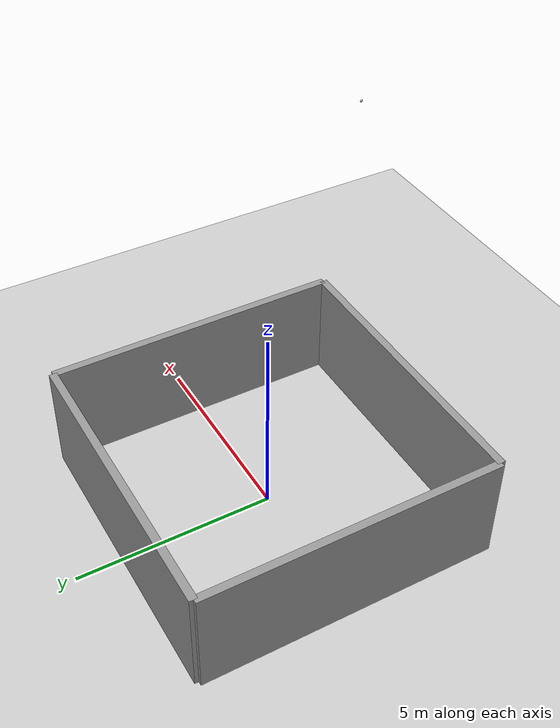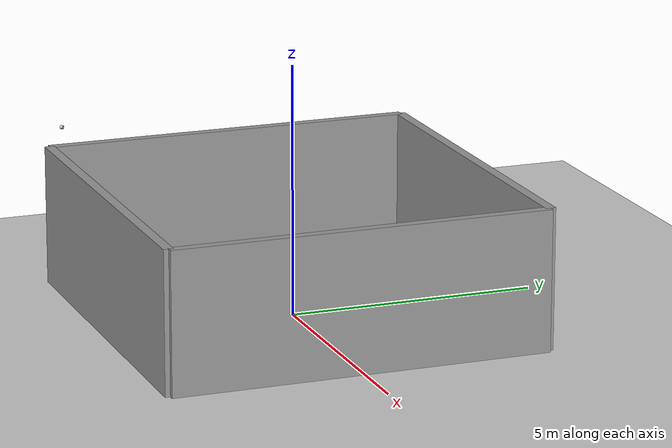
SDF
<sdf version="1.6">
 <world name="wheeltec_rrt_explore">
  <include><uri>model://ground_plane</uri></include>
  <include><uri>model://sun</uri></include>
  <include><name>wall_north</name><uri>model://grey_wall</uri><pose>0 3.75 0 0 0 0</pose></include>
  <include><name>wall_south</name><uri>model://grey_wall</uri><pose>0 -3.75 0 0 0 0</pose></include>
  <include><name>wall_east</name><uri>model://grey_wall</uri><pose>3.75 0 0 0 0 1.5708</pose></include>
  <include><name>wall_west</name><uri>model://grey_wall</uri><pose>-3.75 0 0 0 0 1.5708</pose></include>
  <model name="scene_camera">
   <static>true</static>
   <pose>6.5 -6.5 6.0 0 0.578 2.356</pose>
   <link name="link">
    <visual name="vis"><geometry><box><size>0.05 0.05 0.05</size></box></geometry></visual>
    <sensor type="camera" name="scene_cam">
     <always_on>true</always_on>
     <update_rate>15</update_rate>
     <camera name="scene">
      <horizontal_fov>1.05</horizontal_fov>
      <image><width>960</width><height>540</height><format>R8G8B8</format></image>
      <clip><near>0.1</near><far>100</far></clip>
     </camera>
     <plugin name="scene_cam_controller" filename="libgazebo_ros_camera.so">
      <ros>
       <namespace>/sim_scene/chassis</namespace>
       <remapping>scene/image_raw:=image_raw</remapping>
       <remapping>scene/camera_info:=camera_info</remapping>
      </ros>
      <camera_name>scene</camera_name>
      <frame_name>scene_camera</frame_name>
     </plugin>
    </sensor>
   </link>
  </model>
  <physics name="default_physics" default="0" type="ode">
   <max_step_size>0.001</max_step_size>
   <real_time_factor>1.0</real_time_factor>
   <real_time_update_rate>1000</real_time_update_rate>
  </physics>
 </world>
</sdf>

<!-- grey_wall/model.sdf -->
<sdf version="1.5">
  <model name="grey_wall">
    <static>true</static>
    <link name="link">
      <pose>0 0 1.4 0 0 0</pose>
      <collision name="collision">
        <geometry>
          <box>
            <size>7.5 0.2 2.8</size>
          </box>
        </geometry>
      </collision>
      <visual name="visual">
        <cast_shadows>false</cast_shadows>
        <geometry>
          <box>
            <size>7.5 0.2 2.8</size>
          </box>
        </geometry>
        <material>
          <script>
            <uri>model://../model_source/models/grey_wall/materials/scripts</uri>
            <uri>model://../model_source/models/grey_wall/materials/textures</uri>
            <name>vrc/grey_wall</name>
          </script>
        </material>
      </visual>
    </link>
  </model>
</sdf>
